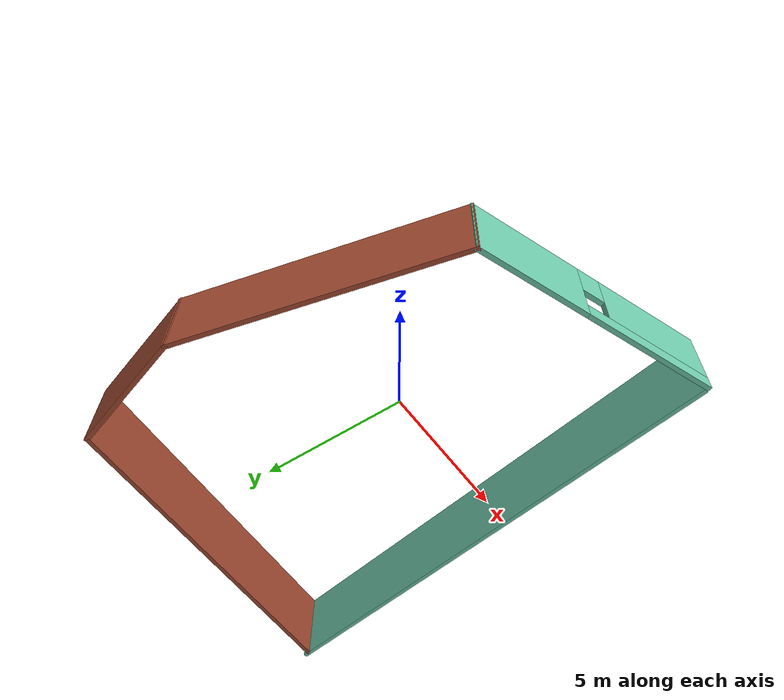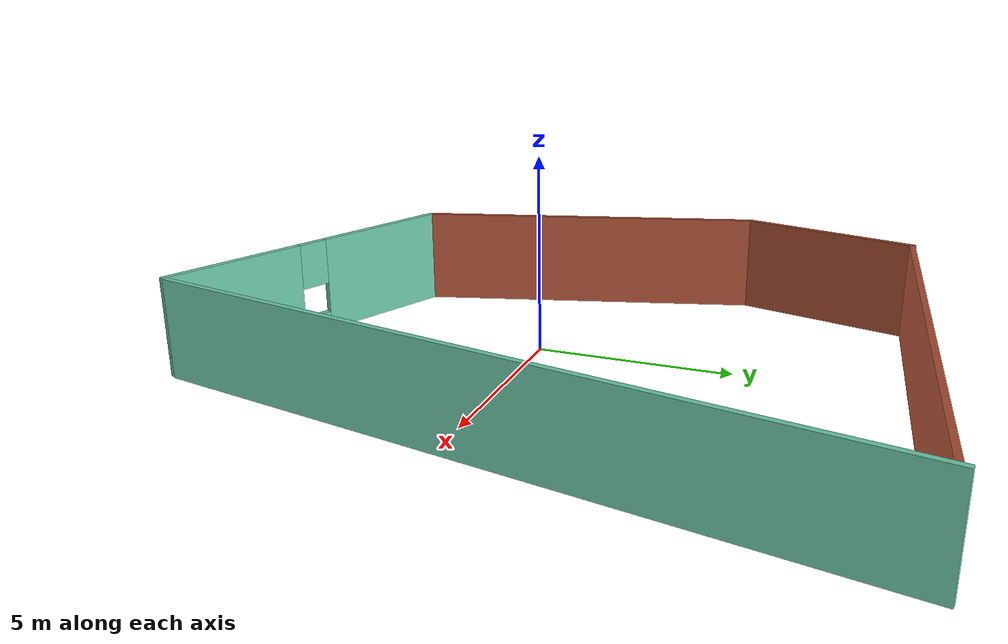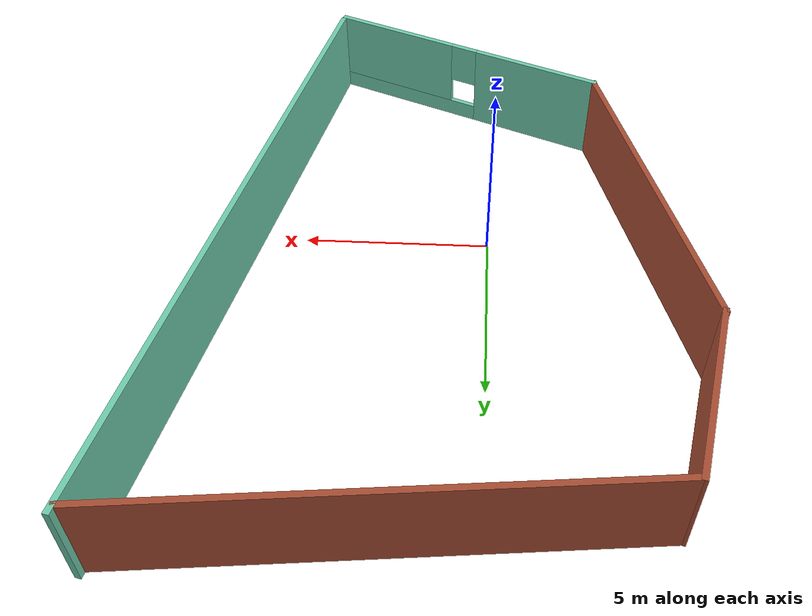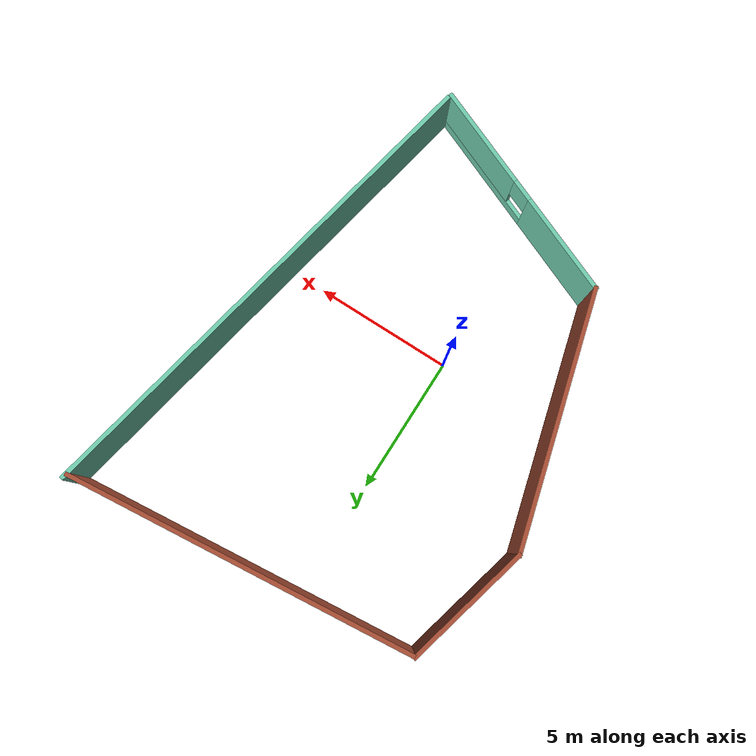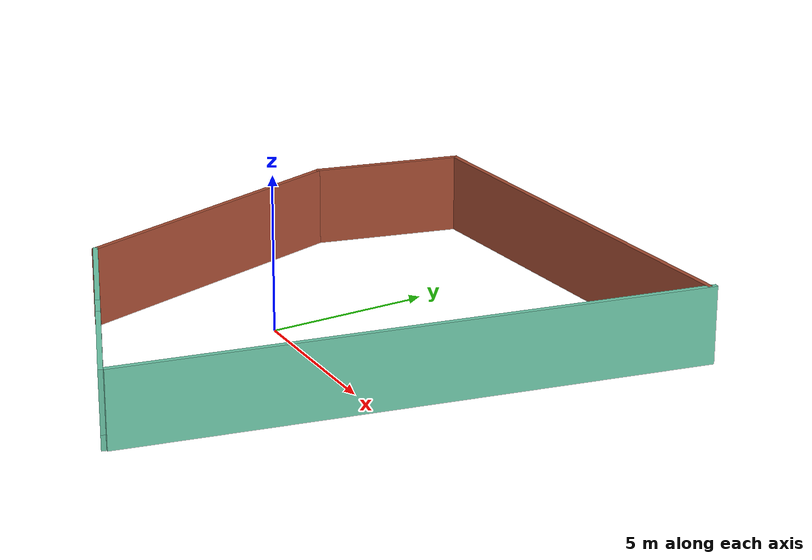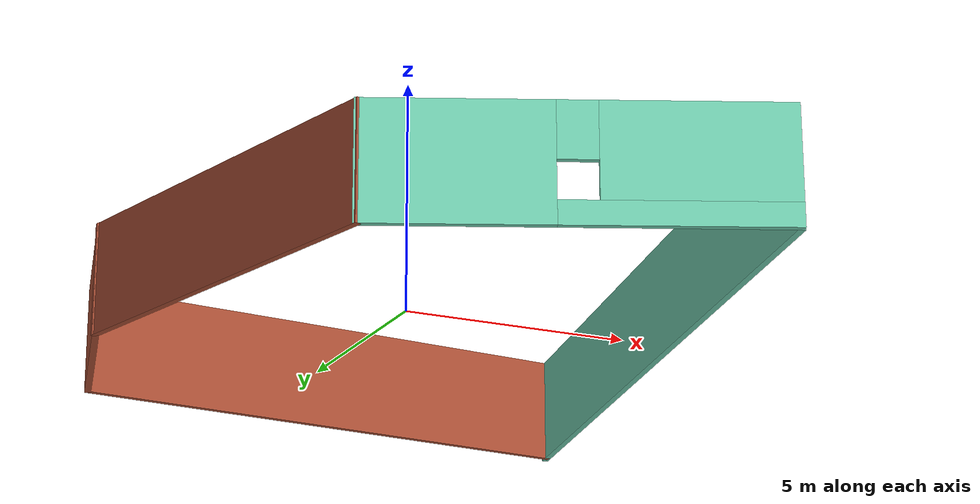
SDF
<?xml version='1.0'?>
<sdf version='1.6'>
  <model name='building'>
    <pose frame=''>1.46841 1.20638 0 0 -0 0</pose>
    <link name='Wall_0'>
      <collision name='Wall_0_Collision'>
        <geometry>
          <box>
            <size>4.68634 0.15 2.5</size>
          </box>
        </geometry>
        <pose frame=''>0 0 1.25 0 -0 0</pose>
      </collision>
      <visual name='Wall_0_Visual'>
        <pose frame=''>0 0 1.25 0 -0 0</pose>
        <geometry>
          <box>
            <size>4.68634 0.15 2.5</size>
          </box>
        </geometry>
        <material>
          <script>
            <uri>file://media/materials/scripts/gazebo.material</uri>
            <name>Gazebo/Bricks</name>
          </script>
          <ambient>1 1 1 1</ambient>
        </material>
        <meta>
          <layer>0</layer>
        </meta>
      </visual>
      <pose frame=''>-6.21543 5.31738 0 0 0 -1.82044</pose>
    </link>
    <link name='Wall_1'>
      <collision name='Wall_1_Collision'>
        <geometry>
          <box>
            <size>9.25 0.15 2.5</size>
          </box>
        </geometry>
        <pose frame=''>0 0 1.25 0 -0 0</pose>
      </collision>
      <visual name='Wall_1_Visual'>
        <pose frame=''>0 0 1.25 0 -0 0</pose>
        <geometry>
          <box>
            <size>9.25 0.15 2.5</size>
          </box>
        </geometry>
        <material>
          <script>
            <uri>file://media/materials/scripts/gazebo.material</uri>
            <name>Gazebo/Bricks</name>
          </script>
          <ambient>1 1 1 1</ambient>
        </material>
        <meta>
          <layer>0</layer>
        </meta>
      </visual>
      <pose frame=''>-5.59818 -1.27544 0 0 0 -1.309</pose>
    </link>
    <link name='Wall_2'>
      <pose frame=''>-0.620057 -7.27949 0 0 0 -0.400505</pose>
      <visual name='Wall_2_Visual_0'>
        <pose frame=''>-2.3054 0 1.25 0 -0 0</pose>
        <geometry>
          <box>
            <size>3.7934 0.15 2.5</size>
          </box>
        </geometry>
        <material>
          <script>
            <uri>file://media/materials/scripts/gazebo.material</uri>
            <name>Gazebo/Grey</name>
          </script>
          <ambient>0.435294 0.796078 0.67451 1</ambient>
        </material>
        <meta>
          <layer>0</layer>
        </meta>
      </visual>
      <collision name='Wall_2_Collision_0'>
        <geometry>
          <box>
            <size>3.7934 0.15 2.5</size>
          </box>
        </geometry>
        <pose frame=''>-2.3054 0 1.25 0 -0 0</pose>
      </collision>
      <visual name='Wall_2_Visual_1'>
        <pose frame=''>1.8967 0 0.25 0 -0 0</pose>
        <geometry>
          <box>
            <size>4.6108 0.15 0.5</size>
          </box>
        </geometry>
        <material>
          <script>
            <uri>file://media/materials/scripts/gazebo.material</uri>
            <name>Gazebo/Grey</name>
          </script>
          <ambient>0.435294 0.796078 0.67451 1</ambient>
        </material>
        <meta>
          <layer>0</layer>
        </meta>
      </visual>
      <collision name='Wall_2_Collision_1'>
        <geometry>
          <box>
            <size>4.6108 0.15 0.5</size>
          </box>
        </geometry>
        <pose frame=''>1.8967 0 0.25 0 -0 0</pose>
      </collision>
      <visual name='Wall_2_Visual_2'>
        <pose frame=''>2.2967 0 1.5 0 -0 0</pose>
        <geometry>
          <box>
            <size>3.8108 0.15 2</size>
          </box>
        </geometry>
        <material>
          <script>
            <uri>file://media/materials/scripts/gazebo.material</uri>
            <name>Gazebo/Grey</name>
          </script>
          <ambient>0.435294 0.796078 0.67451 1</ambient>
        </material>
        <meta>
          <layer>0</layer>
        </meta>
      </visual>
      <collision name='Wall_2_Collision_2'>
        <geometry>
          <box>
            <size>3.8108 0.15 2</size>
          </box>
        </geometry>
        <pose frame=''>2.2967 0 1.5 0 -0 0</pose>
      </collision>
      <visual name='Wall_2_Visual_3'>
        <pose frame=''>-0.008699 0 1.9 0 -0 0</pose>
        <geometry>
          <box>
            <size>0.8 0.15 1.2</size>
          </box>
        </geometry>
        <material>
          <script>
            <uri>file://media/materials/scripts/gazebo.material</uri>
            <name>Gazebo/Grey</name>
          </script>
          <ambient>0.435294 0.796078 0.67451 1</ambient>
        </material>
        <meta>
          <layer>0</layer>
        </meta>
      </visual>
      <collision name='Wall_2_Collision_3'>
        <geometry>
          <box>
            <size>0.8 0.15 1.2</size>
          </box>
        </geometry>
        <pose frame=''>-0.008699 0 1.9 0 -0 0</pose>
      </collision>
    </link>
    <link name='Wall_3'>
      <collision name='Wall_3_Collision'>
        <geometry>
          <box>
            <size>18.1467 0.15 2.5</size>
          </box>
        </geometry>
        <pose frame=''>0 0 1.25 0 -0 0</pose>
      </collision>
      <visual name='Wall_3_Visual'>
        <pose frame=''>0 0 1.25 0 -0 0</pose>
        <geometry>
          <box>
            <size>18.1467 0.15 2.5</size>
          </box>
        </geometry>
        <material>
          <script>
            <uri>file://media/materials/scripts/gazebo.material</uri>
            <name>Gazebo/Grey</name>
          </script>
          <ambient>0.435294 0.796078 0.67451 1</ambient>
        </material>
        <meta>
          <layer>0</layer>
        </meta>
      </visual>
      <pose frame=''>5.01491 0.074988 0 0 -0 1.37342</pose>
    </link>
    <link name='Wall_4'>
      <collision name='Wall_4_Collision'>
        <geometry>
          <box>
            <size>12.4968 0.15 2.5</size>
          </box>
        </geometry>
        <pose frame=''>0 0 1.25 0 -0 0</pose>
      </collision>
      <visual name='Wall_4_Visual'>
        <pose frame=''>0 0 1.25 0 -0 0</pose>
        <geometry>
          <box>
            <size>12.4968 0.15 2.5</size>
          </box>
        </geometry>
        <material>
          <script>
            <uri>file://media/materials/scripts/gazebo.material</uri>
            <name>Gazebo/Bricks</name>
          </script>
          <ambient>1 1 1 1</ambient>
        </material>
        <meta>
          <layer>0</layer>
        </meta>
      </visual>
      <pose frame=''>0.567424 8.13697 0 0 0 -3.04071</pose>
    </link>
    <static>1</static>
  </model>
</sdf>
